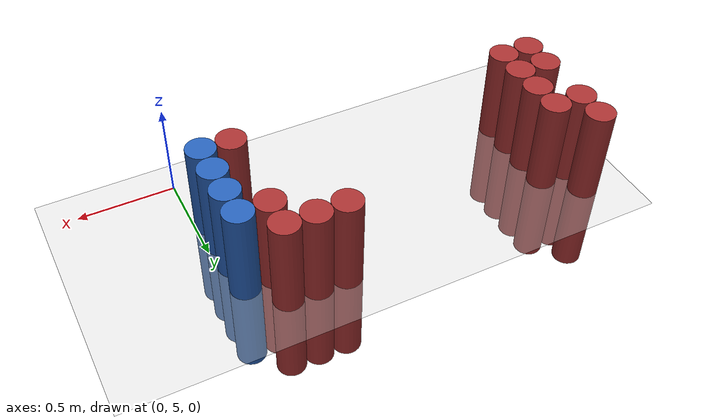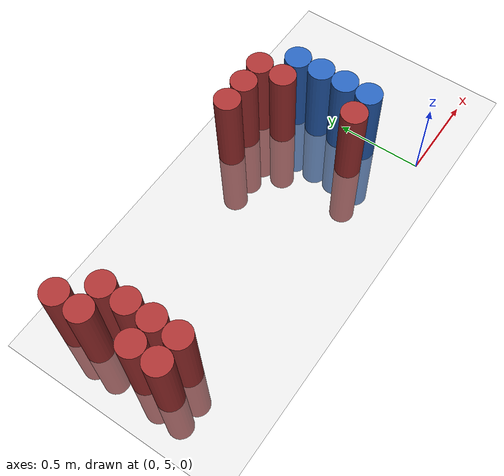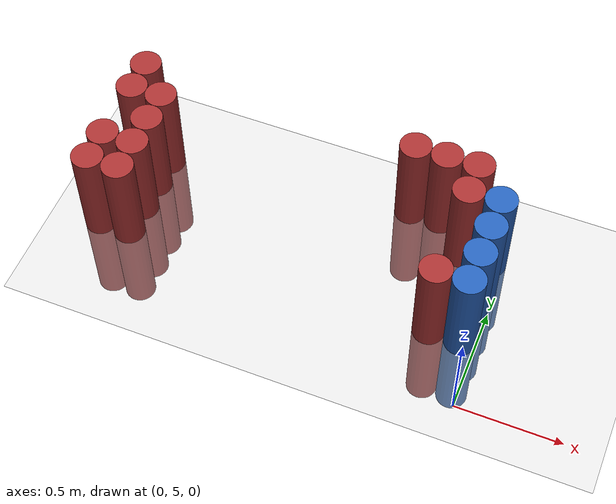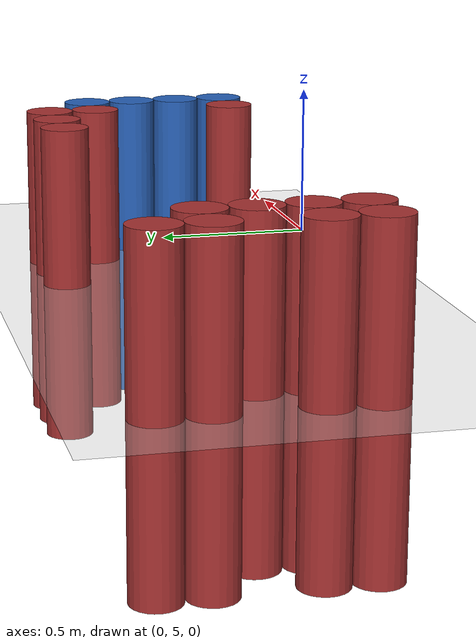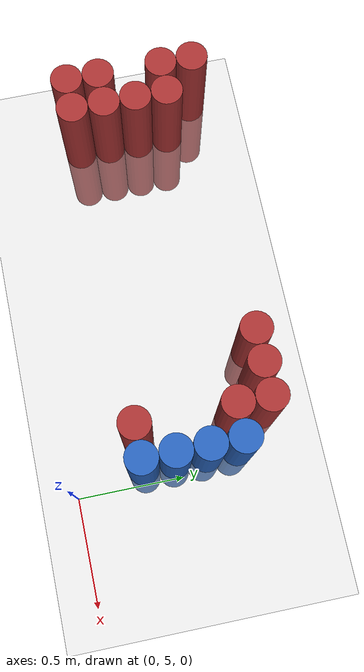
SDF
<sdf version="1.6">
 <world name="world_237">
  <model name="ground_plane">
   <static>1</static>
   <link name="link">
    <collision name="collision">
     <geometry><plane><normal>0 0 1</normal><size>100 100</size></plane></geometry>
     <surface><friction><ode><mu>100</mu><mu2>50</mu2></ode></friction></surface>
    </collision>
    <visual name="visual">
     <cast_shadows>0</cast_shadows>
     <geometry><plane><normal>0 0 1</normal><size>100 100</size></plane></geometry>
     <material>
      <script><uri>file://media/materials/scripts/gazebo.material</uri><name>Gazebo/Grey</name></script>
     </material>
    </visual>
   </link>
  </model>
  <model name="unit_cylinder_180">
   <static>1</static>
   <pose>-1.875000 5.325000 0.000000 0.000000 0.000000 0.000000</pose>
   <link name="link">
    <inertial>
     <mass>1</mass>
     <inertia><ixx>0.145833</ixx><ixy>0</ixy><ixz>0</ixz><iyy>0.145833</iyy><iyz>0</iyz><izz>0.125</izz></inertia>
    </inertial>
    <collision name="collision">
     <geometry><cylinder><radius>0.075000</radius><length>1</length></cylinder></geometry>
    </collision>
    <visual name="visual">
     <geometry><cylinder><radius>0.075000</radius><length>1</length></cylinder></geometry>
     <material>
      <ambient>0.648000 0.192000 0.192000 1</ambient>
      <diffuse>0.648000 0.192000 0.192000 1</diffuse>
     </material>
     <material>
      <script><name>Gazebo/Grey</name><uri>file://media/materials/scripts/gazebo.material</uri></script>
     </material>
    </visual>
   </link>
  </model>
  <model name="unit_cylinder_181">
   <static>1</static>
   <pose>-1.875000 5.475000 0.000000 0.000000 0.000000 0.000000</pose>
   <link name="link">
    <inertial>
     <mass>1</mass>
     <inertia><ixx>0.145833</ixx><ixy>0</ixy><ixz>0</ixz><iyy>0.145833</iyy><iyz>0</iyz><izz>0.125</izz></inertia>
    </inertial>
    <collision name="collision">
     <geometry><cylinder><radius>0.075000</radius><length>1</length></cylinder></geometry>
    </collision>
    <visual name="visual">
     <geometry><cylinder><radius>0.075000</radius><length>1</length></cylinder></geometry>
     <material>
      <ambient>0.648000 0.192000 0.192000 1</ambient>
      <diffuse>0.648000 0.192000 0.192000 1</diffuse>
     </material>
     <material>
      <script><name>Gazebo/Grey</name><uri>file://media/materials/scripts/gazebo.material</uri></script>
     </material>
    </visual>
   </link>
  </model>
  <model name="unit_cylinder_182">
   <static>1</static>
   <pose>-1.875000 5.775000 0.000000 0.000000 0.000000 0.000000</pose>
   <link name="link">
    <inertial>
     <mass>1</mass>
     <inertia><ixx>0.145833</ixx><ixy>0</ixy><ixz>0</ixz><iyy>0.145833</iyy><iyz>0</iyz><izz>0.125</izz></inertia>
    </inertial>
    <collision name="collision">
     <geometry><cylinder><radius>0.075000</radius><length>1</length></cylinder></geometry>
    </collision>
    <visual name="visual">
     <geometry><cylinder><radius>0.075000</radius><length>1</length></cylinder></geometry>
     <material>
      <ambient>0.648000 0.192000 0.192000 1</ambient>
      <diffuse>0.648000 0.192000 0.192000 1</diffuse>
     </material>
     <material>
      <script><name>Gazebo/Grey</name><uri>file://media/materials/scripts/gazebo.material</uri></script>
     </material>
    </visual>
   </link>
  </model>
  <model name="unit_cylinder_183">
   <static>1</static>
   <pose>-1.875000 5.925000 0.000000 0.000000 0.000000 0.000000</pose>
   <link name="link">
    <inertial>
     <mass>1</mass>
     <inertia><ixx>0.145833</ixx><ixy>0</ixy><ixz>0</ixz><iyy>0.145833</iyy><iyz>0</iyz><izz>0.125</izz></inertia>
    </inertial>
    <collision name="collision">
     <geometry><cylinder><radius>0.075000</radius><length>1</length></cylinder></geometry>
    </collision>
    <visual name="visual">
     <geometry><cylinder><radius>0.075000</radius><length>1</length></cylinder></geometry>
     <material>
      <ambient>0.648000 0.192000 0.192000 1</ambient>
      <diffuse>0.648000 0.192000 0.192000 1</diffuse>
     </material>
     <material>
      <script><name>Gazebo/Grey</name><uri>file://media/materials/scripts/gazebo.material</uri></script>
     </material>
    </visual>
   </link>
  </model>
  <model name="unit_cylinder_191">
   <static>1</static>
   <pose>-1.725000 5.325000 0.000000 0.000000 0.000000 0.000000</pose>
   <link name="link">
    <inertial>
     <mass>1</mass>
     <inertia><ixx>0.145833</ixx><ixy>0</ixy><ixz>0</ixz><iyy>0.145833</iyy><iyz>0</iyz><izz>0.125</izz></inertia>
    </inertial>
    <collision name="collision">
     <geometry><cylinder><radius>0.075000</radius><length>1</length></cylinder></geometry>
    </collision>
    <visual name="visual">
     <geometry><cylinder><radius>0.075000</radius><length>1</length></cylinder></geometry>
     <material>
      <ambient>0.648000 0.192000 0.192000 1</ambient>
      <diffuse>0.648000 0.192000 0.192000 1</diffuse>
     </material>
     <material>
      <script><name>Gazebo/Grey</name><uri>file://media/materials/scripts/gazebo.material</uri></script>
     </material>
    </visual>
   </link>
  </model>
  <model name="unit_cylinder_192">
   <static>1</static>
   <pose>-1.725000 5.475000 0.000000 0.000000 0.000000 0.000000</pose>
   <link name="link">
    <inertial>
     <mass>1</mass>
     <inertia><ixx>0.145833</ixx><ixy>0</ixy><ixz>0</ixz><iyy>0.145833</iyy><iyz>0</iyz><izz>0.125</izz></inertia>
    </inertial>
    <collision name="collision">
     <geometry><cylinder><radius>0.075000</radius><length>1</length></cylinder></geometry>
    </collision>
    <visual name="visual">
     <geometry><cylinder><radius>0.075000</radius><length>1</length></cylinder></geometry>
     <material>
      <ambient>0.648000 0.192000 0.192000 1</ambient>
      <diffuse>0.648000 0.192000 0.192000 1</diffuse>
     </material>
     <material>
      <script><name>Gazebo/Grey</name><uri>file://media/materials/scripts/gazebo.material</uri></script>
     </material>
    </visual>
   </link>
  </model>
  <model name="unit_cylinder_193">
   <static>1</static>
   <pose>-1.725000 5.625000 0.000000 0.000000 0.000000 0.000000</pose>
   <link name="link">
    <inertial>
     <mass>1</mass>
     <inertia><ixx>0.145833</ixx><ixy>0</ixy><ixz>0</ixz><iyy>0.145833</iyy><iyz>0</iyz><izz>0.125</izz></inertia>
    </inertial>
    <collision name="collision">
     <geometry><cylinder><radius>0.075000</radius><length>1</length></cylinder></geometry>
    </collision>
    <visual name="visual">
     <geometry><cylinder><radius>0.075000</radius><length>1</length></cylinder></geometry>
     <material>
      <ambient>0.648000 0.192000 0.192000 1</ambient>
      <diffuse>0.648000 0.192000 0.192000 1</diffuse>
     </material>
     <material>
      <script><name>Gazebo/Grey</name><uri>file://media/materials/scripts/gazebo.material</uri></script>
     </material>
    </visual>
   </link>
  </model>
  <model name="unit_cylinder_194">
   <static>1</static>
   <pose>-1.725000 5.775000 0.000000 0.000000 0.000000 0.000000</pose>
   <link name="link">
    <inertial>
     <mass>1</mass>
     <inertia><ixx>0.145833</ixx><ixy>0</ixy><ixz>0</ixz><iyy>0.145833</iyy><iyz>0</iyz><izz>0.125</izz></inertia>
    </inertial>
    <collision name="collision">
     <geometry><cylinder><radius>0.075000</radius><length>1</length></cylinder></geometry>
    </collision>
    <visual name="visual">
     <geometry><cylinder><radius>0.075000</radius><length>1</length></cylinder></geometry>
     <material>
      <ambient>0.648000 0.192000 0.192000 1</ambient>
      <diffuse>0.648000 0.192000 0.192000 1</diffuse>
     </material>
     <material>
      <script><name>Gazebo/Grey</name><uri>file://media/materials/scripts/gazebo.material</uri></script>
     </material>
    </visual>
   </link>
  </model>
  <model name="unit_cylinder_223">
   <static>1</static>
   <pose>-0.525000 5.925000 0.000000 0.000000 0.000000 0.000000</pose>
   <link name="link">
    <inertial>
     <mass>1</mass>
     <inertia><ixx>0.145833</ixx><ixy>0</ixy><ixz>0</ixz><iyy>0.145833</iyy><iyz>0</iyz><izz>0.125</izz></inertia>
    </inertial>
    <collision name="collision">
     <geometry><cylinder><radius>0.075000</radius><length>1</length></cylinder></geometry>
    </collision>
    <visual name="visual">
     <geometry><cylinder><radius>0.075000</radius><length>1</length></cylinder></geometry>
     <material>
      <ambient>0.648000 0.192000 0.192000 1</ambient>
      <diffuse>0.648000 0.192000 0.192000 1</diffuse>
     </material>
     <material>
      <script><name>Gazebo/Grey</name><uri>file://media/materials/scripts/gazebo.material</uri></script>
     </material>
    </visual>
   </link>
  </model>
  <model name="unit_cylinder_226">
   <static>1</static>
   <pose>-0.375000 5.925000 0.000000 0.000000 0.000000 0.000000</pose>
   <link name="link">
    <inertial>
     <mass>1</mass>
     <inertia><ixx>0.145833</ixx><ixy>0</ixy><ixz>0</ixz><iyy>0.145833</iyy><iyz>0</iyz><izz>0.125</izz></inertia>
    </inertial>
    <collision name="collision">
     <geometry><cylinder><radius>0.075000</radius><length>1</length></cylinder></geometry>
    </collision>
    <visual name="visual">
     <geometry><cylinder><radius>0.075000</radius><length>1</length></cylinder></geometry>
     <material>
      <ambient>0.648000 0.192000 0.192000 1</ambient>
      <diffuse>0.648000 0.192000 0.192000 1</diffuse>
     </material>
     <material>
      <script><name>Gazebo/Grey</name><uri>file://media/materials/scripts/gazebo.material</uri></script>
     </material>
    </visual>
   </link>
  </model>
  <model name="unit_cylinder_229">
   <static>1</static>
   <pose>-0.225000 5.325000 0.000000 0.000000 0.000000 0.000000</pose>
   <link name="link">
    <inertial>
     <mass>1</mass>
     <inertia><ixx>0.145833</ixx><ixy>0</ixy><ixz>0</ixz><iyy>0.145833</iyy><iyz>0</iyz><izz>0.125</izz></inertia>
    </inertial>
    <collision name="collision">
     <geometry><cylinder><radius>0.075000</radius><length>1</length></cylinder></geometry>
    </collision>
    <visual name="visual">
     <geometry><cylinder><radius>0.075000</radius><length>1</length></cylinder></geometry>
     <material>
      <ambient>0.648000 0.192000 0.192000 1</ambient>
      <diffuse>0.648000 0.192000 0.192000 1</diffuse>
     </material>
     <material>
      <script><name>Gazebo/Grey</name><uri>file://media/materials/scripts/gazebo.material</uri></script>
     </material>
    </visual>
   </link>
  </model>
  <model name="unit_cylinder_230">
   <static>1</static>
   <pose>-0.225000 5.775000 0.000000 0.000000 0.000000 0.000000</pose>
   <link name="link">
    <inertial>
     <mass>1</mass>
     <inertia><ixx>0.145833</ixx><ixy>0</ixy><ixz>0</ixz><iyy>0.145833</iyy><iyz>0</iyz><izz>0.125</izz></inertia>
    </inertial>
    <collision name="collision">
     <geometry><cylinder><radius>0.075000</radius><length>1</length></cylinder></geometry>
    </collision>
    <visual name="visual">
     <geometry><cylinder><radius>0.075000</radius><length>1</length></cylinder></geometry>
     <material>
      <ambient>0.648000 0.192000 0.192000 1</ambient>
      <diffuse>0.648000 0.192000 0.192000 1</diffuse>
     </material>
     <material>
      <script><name>Gazebo/Grey</name><uri>file://media/materials/scripts/gazebo.material</uri></script>
     </material>
    </visual>
   </link>
  </model>
  <model name="unit_cylinder_231">
   <static>1</static>
   <pose>-0.225000 5.925000 0.000000 0.000000 0.000000 0.000000</pose>
   <link name="link">
    <inertial>
     <mass>1</mass>
     <inertia><ixx>0.145833</ixx><ixy>0</ixy><ixz>0</ixz><iyy>0.145833</iyy><iyz>0</iyz><izz>0.125</izz></inertia>
    </inertial>
    <collision name="collision">
     <geometry><cylinder><radius>0.075000</radius><length>1</length></cylinder></geometry>
    </collision>
    <visual name="visual">
     <geometry><cylinder><radius>0.075000</radius><length>1</length></cylinder></geometry>
     <material>
      <ambient>0.648000 0.192000 0.192000 1</ambient>
      <diffuse>0.648000 0.192000 0.192000 1</diffuse>
     </material>
     <material>
      <script><name>Gazebo/Grey</name><uri>file://media/materials/scripts/gazebo.material</uri></script>
     </material>
    </visual>
   </link>
  </model>
  <model name="unit_cylinder_243">
   <static>1</static>
   <pose>-0.075000 5.325000 0.000000 0.000000 0.000000 0.000000</pose>
   <link name="link">
    <inertial>
     <mass>1</mass>
     <inertia><ixx>0.145833</ixx><ixy>0</ixy><ixz>0</ixz><iyy>0.145833</iyy><iyz>0</iyz><izz>0.125</izz></inertia>
    </inertial>
    <collision name="collision">
     <geometry><cylinder><radius>0.075000</radius><length>1</length></cylinder></geometry>
    </collision>
    <visual name="visual">
     <geometry><cylinder><radius>0.075000</radius><length>1</length></cylinder></geometry>
     <material>
      <ambient>0.152000 0.379000 0.720000 1</ambient>
      <diffuse>0.152000 0.379000 0.720000 1</diffuse>
     </material>
     <material>
      <script><name>Gazebo/Grey</name><uri>file://media/materials/scripts/gazebo.material</uri></script>
     </material>
    </visual>
   </link>
  </model>
  <model name="unit_cylinder_244">
   <static>1</static>
   <pose>-0.075000 5.475000 0.000000 0.000000 0.000000 0.000000</pose>
   <link name="link">
    <inertial>
     <mass>1</mass>
     <inertia><ixx>0.145833</ixx><ixy>0</ixy><ixz>0</ixz><iyy>0.145833</iyy><iyz>0</iyz><izz>0.125</izz></inertia>
    </inertial>
    <collision name="collision">
     <geometry><cylinder><radius>0.075000</radius><length>1</length></cylinder></geometry>
    </collision>
    <visual name="visual">
     <geometry><cylinder><radius>0.075000</radius><length>1</length></cylinder></geometry>
     <material>
      <ambient>0.152000 0.379000 0.720000 1</ambient>
      <diffuse>0.152000 0.379000 0.720000 1</diffuse>
     </material>
     <material>
      <script><name>Gazebo/Grey</name><uri>file://media/materials/scripts/gazebo.material</uri></script>
     </material>
    </visual>
   </link>
  </model>
  <model name="unit_cylinder_245">
   <static>1</static>
   <pose>-0.075000 5.625000 0.000000 0.000000 0.000000 0.000000</pose>
   <link name="link">
    <inertial>
     <mass>1</mass>
     <inertia><ixx>0.145833</ixx><ixy>0</ixy><ixz>0</ixz><iyy>0.145833</iyy><iyz>0</iyz><izz>0.125</izz></inertia>
    </inertial>
    <collision name="collision">
     <geometry><cylinder><radius>0.075000</radius><length>1</length></cylinder></geometry>
    </collision>
    <visual name="visual">
     <geometry><cylinder><radius>0.075000</radius><length>1</length></cylinder></geometry>
     <material>
      <ambient>0.152000 0.379000 0.720000 1</ambient>
      <diffuse>0.152000 0.379000 0.720000 1</diffuse>
     </material>
     <material>
      <script><name>Gazebo/Grey</name><uri>file://media/materials/scripts/gazebo.material</uri></script>
     </material>
    </visual>
   </link>
  </model>
  <model name="unit_cylinder_246">
   <static>1</static>
   <pose>-0.075000 5.775000 0.000000 0.000000 0.000000 0.000000</pose>
   <link name="link">
    <inertial>
     <mass>1</mass>
     <inertia><ixx>0.145833</ixx><ixy>0</ixy><ixz>0</ixz><iyy>0.145833</iyy><iyz>0</iyz><izz>0.125</izz></inertia>
    </inertial>
    <collision name="collision">
     <geometry><cylinder><radius>0.075000</radius><length>1</length></cylinder></geometry>
    </collision>
    <visual name="visual">
     <geometry><cylinder><radius>0.075000</radius><length>1</length></cylinder></geometry>
     <material>
      <ambient>0.152000 0.379000 0.720000 1</ambient>
      <diffuse>0.152000 0.379000 0.720000 1</diffuse>
     </material>
     <material>
      <script><name>Gazebo/Grey</name><uri>file://media/materials/scripts/gazebo.material</uri></script>
     </material>
    </visual>
   </link>
  </model>
 </world>
</sdf>
